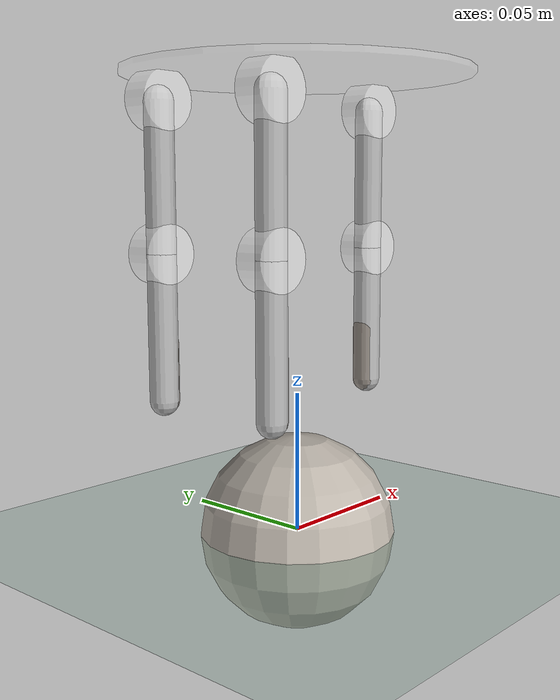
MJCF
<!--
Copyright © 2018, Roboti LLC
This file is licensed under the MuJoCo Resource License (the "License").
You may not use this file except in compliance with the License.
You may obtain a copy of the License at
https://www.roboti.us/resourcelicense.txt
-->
<mujoco model="2-link servo arm -- no sensory info">
<!-- settings -->
    <compiler inertiafromgeom="true" angle="degree">
      <lengthrange uselimit="true"/>
    </compiler>
    <option timestep="0.01"  iterations="50" solver="Newton" gravity=" 0 0 -9.8" tolerance="1e-10">
          <flag gravity="enable" contact="enable" passive="enable"/>
    </option>
    <size njmax="5000" nconmax="1000" nstack="200000"/>
    <visual>
        <rgba haze=".3 .3 .3 1"/>
        <global fovy="4" ipd="1" />
    </visual>
<!-- defaults -->
    <default>
        <joint limited="true" stiffness= "0" damping=".005" frictionloss="2"/>
        <geom friction="1 .05 .001" condim="3"/>
        <position ctrllimited="true" gear="1" kp=".05"/>
    </default>
<!-- assets -->
    <asset>
        <texture name="texmarble" type="cube" file="ball.png"/>
        <texture type="skybox" builtin="gradient" rgb1="1 1 1" rgb2="0.7 0.7 .7" width="512" height="512"/>
        <material name="matmarble" texture="texmarble" rgba="1 1 1 1" />
	    <texture builtin="gradient" height="100" rgb1="1 1 1" rgb2="0 0 0" type="skybox" width="100"/>
	    <texture builtin="flat" height="1278" mark="cross" markrgb="1 1 1" name="texgeom" random="0.01" rgb1="0.8 0.6 0.4" rgb2="0.8 0.6 0.4" type="cube" width="127"/>
	    <texture builtin="checker" height="100" name="texplane" rgb1="0 0 0" rgb2="0.8 0.8 0.8" type="2d" width="100"/>
	    <material name="MatPlane" reflectance="0.5" shininess="1" specular="1" texrepeat="60 60" texture="texplane"/>
	    <material name="geom" texture="texgeom" texuniform="true"/>
	    </asset>
<!-- world body -->
    <worldbody>
	    <light cutoff="100" diffuse="1 1 1" dir="-0 0 -1.3" directional="true" exponent="1" pos="0.1 0 .1" specular=".1 .1 .1"/>
	    <geom conaffinity="1" condim="3" name="floor" pos="0 0 0" rgba="0.5 0.7 0.6 1" size="1 0 0.1" type="plane"
         solref='0.01 0.01' friction='.1 .1'/>

<!-- hand -->
        <body name='hand' pos="0 0 0.15">
            <camera name="track" mode="fixed" pos="0 -0.5 0" xyaxes="1 0 0 0 0 1"
              fovy="40" ipd="1"/>
            <geom name="palm" pos="0 0 0.01" type="cylinder" size="0.06 0.001" rgba="1 1 1 .125"/>
            <joint name="palm" type="slide" axis="0 0 1" limited="true" range="-.04 .07" damping="1"/>
<!-- finger1 -->
	<!-- MCP1 -->
            <body name= "Finger1" pos="-.04 0.025 0">
                <joint type ="hinge" name="MCP1" pos="0 0 0" axis="0 1 0" range="-45 45"/>
                <geom name="fin1" type="cylinder" pos="0 0 0" zaxis="0 1 0" size=".01 .005" rgba="1 1 1 .5"/>
                <geom name="L0" type="capsule" size="0.005" fromto="0 0 0  0 0 -.05" rgba=".7 .7 .7 1"/>
    <!-- PIP1 -->
	            <body pos="0 0 -0.05">
	                <joint type ="hinge" name="PIP1" pos="0 0 0" axis="0 1 0" range="-90 0"/>
	                <geom name="PIP1" type="cylinder" pos="0 0 0" zaxis="0 1 0" size=".01 .005" rgba="1 1 1 .5"/>
	                <body pos="0 0 0">
	                  <body pos="0 0 0">
	                    <geom name="PIP1_FS" fromto="0.001 0 -.03 0.001 0 -0.05" type="capsule" size="0.0045"  rgba="0.3 0.2 0.1 0.3" mass="0.0"/>
	                    <site name="sensorfig1"  fromto="0.001 0 -.03 0.001 0 -0.05" type="capsule" size="0.0045"  rgba="0.3 0.2 0.1 0.3"/>
	                  </body>
	                </body>
	                <geom name="L1" type="capsule" size="0.005" fromto="0 0 0 0 0 -0.05" rgba=".7 .7 .7 1"/>
	             </body>
        	</body>
<!-- finger2 -->
	<!-- MCP2 -->
            <body name="Finger2"  pos= "-0.04 -0.025 0">
                <joint type ="hinge" name="MCP2"  pos="0 0 0" axis="0 1 0 " range="-45 45"/>
                <geom name="fin2" type="cylinder" pos="0 0 0" zaxis=" 0 1 0" size=".01 .005" rgba="1 1 1 .5"/>
	            <geom name="L21" type="capsule" size="0.005" fromto="0 0 0  0 0 -.05" rgba=".7 .7 .7 1"/>
	            <body pos="0 0 -0.05">
                <joint type ="hinge" name="PIP2" pos="0 0 0" axis="0 1 0 " range="-90 0"/>
                <geom name="PIP2" type="cylinder" pos="0 0 0" zaxis="0 1 0" size=".01 .005" rgba="1 1 1 .5"/>
    <!-- PIP2 -->
                <body pos="0 0 0">
                    <body pos="0 0 0">
                        <geom name="PIP2_FS" fromto="0.001 0 -.03 0.001 0 -0.05" type="capsule" size="0.0045"  rgba="0.3 0.2 0.1 0.3" mass="0.0"/>
                        <site name="sensorfig2"  fromto="0.001 0 -.03 0.001 0 -0.05" type="capsule" size="0.0045"  rgba="0.3 0.2 0.1 0.3"/>
                    </body>
                </body>
                <geom name="L22" type="capsule" size="0.005" fromto="0 0 0 0 0 -0.05" rgba=".7 .7 .7 1"/>
            	</body>
            </body>
<!-- thumb -->
	<!-- MCP3 -->
            <body name="thumb" pos=".04 0 0">
              <joint type ="hinge" name="MCP3"  pos="0 0 0" axis="0 1 0 " range="-45 45"/>
              <geom name="fin3" type="cylinder" pos="0 0 0" zaxis=" 0 1 0" size=".01 .005" rgba="1 1 1 .5"/>
              <geom name="L31" type="capsule" size="0.005" fromto="0 0 0  0 0 -.05" rgba=".7 .7 .7 1"/>
    <!-- PIP3 -->
                <body pos="0 0 -0.05">
                    <joint type ="hinge" name="PIP3" pos="0 0 0" axis="0 1 0 " range="0 90"/>
                    <geom name="PIP3" type="cylinder" pos="0 0 0" zaxis="0 1 0" size=".01 .005" rgba="1 1 1 .5"/>
                    <body pos="0 0 0">
                        <body pos="0 0 0">
                            <geom name="PIP3_FS" fromto="-0.001 0 -.03 -0.001 0 -0.05" type="capsule" size="0.0045"  rgba="0.3 0.2 0.1 0.3" mass="0.0"/>
                            <site name="sensorfig3"  fromto="-0.001 0 -.03 -0.001 0 -0.05" type="capsule" size="0.0045"  rgba="0.3 0.2 0.1 0.3"/>
                        </body>
                    </body>
                    <geom name="L32" type="capsule" size="0.005" fromto="0 0 0 0 0 -0.05" rgba=".7 .7 .7 1"/>
                </body>
            </body>
        </body>
<!-- ball -->
		<body name = "ball" pos= "0 0 0">
		    <geom type="sphere" material="matmarble" size="0.035" mass=".005"/>
		    <joint name="rootx" type="slide" armature="0" axis="1 0 0"  damping=".07" frictionloss="0" limited="false" stiffness="1" />
		    <joint name="rootz" type="slide" armature="0" axis="0 0 1" damping="0.5" frictionloss="0" limited="false" stiffness="0"/>
		    <joint name="roty" type="hinge" armature="0" axis="0 1 0 " damping="0.0005"  limited="false"  frictionloss= "0" stiffness="0"/>
		    <site name="Sb1" pos=".04 0 0" size="0.005" rgba="0.55 0.78 0.55 1"/>
		</body>
    </worldbody>
<!-- actuators -->
    <actuator >
    	  <position kp="25" ctrllimited="true" ctrlrange="-.04 .07" joint="palm" name="palm"/>

		  <position joint="MCP1" name="MCP1" ctrlrange="-.78 .78"/>
          <position joint="PIP1" name="PIP1" ctrlrange="-1.57 0"/>

          <position joint="MCP2" name="MCP2" ctrlrange="-.78 .78"/>
          <position joint="PIP2" name="PIP2" ctrlrange="-1.57 0"/>

          <position gear="-1" joint="MCP3" name="MCP3" ctrlrange="-.78 .78"/>
          <position gear="-1" joint="PIP3" name="PIP3" ctrlrange="-1.57 0"/>
    </actuator>
<!-- sensors -->

	<!-- 1D sensors -->

	<!-- 3D sensors -->
  <sensor>
           <force name="touchsensor1" site="sensorfig1" />
           <force name="touchsensor2" site="sensorfig2" />
           <force name="touchsensor3" site="sensorfig3" />
  </sensor>
</mujoco>
